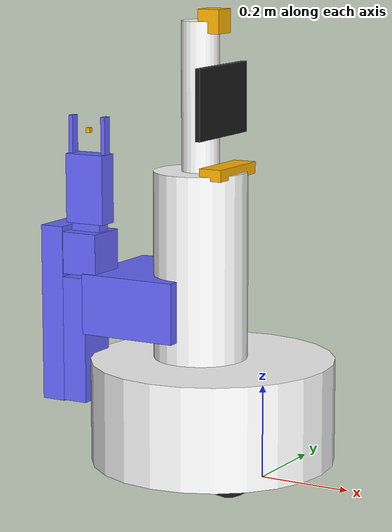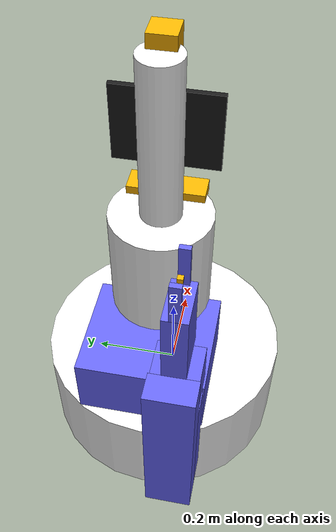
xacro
<?xml version="1.0" ?>

<robot
  xmlns:xacro="http://www.ros.org/wiki/xacro"
  name="korus"
  >

  <!-- ************************** Xacro ************************** -->
  <xacro:property name="pi" value="3.1415926535897931" />
  <xacro:property name="material_white">
    <material name="white">
      <color rgba="1 1 1 1"/>
    </material>
  </xacro:property>
  <xacro:property name="material_orange">
    <material name="orange">
      <color rgba="1.0 0.7 0.0 1"/>
    </material>
  </xacro:property>
  <xacro:property name="material_red">
    <material name="red">
      <color rgba="1.0 0.0 0.0 1"/>
    </material>
  </xacro:property>
  <xacro:property name="material_grey_blue">
    <material name="grey_blue">
      <color rgba="0.4 0.4 1.0 1"/>
    </material>
  </xacro:property>
  <xacro:property name="material_blue">
    <material name="blue">
      <color rgba="0.0 0.0 1.0 1"/>
    </material>
  </xacro:property>
  <xacro:property name="material_green">
    <material name="green">
      <color rgba="0 .8 0 1"/>
    </material>
  </xacro:property>
  <xacro:property name="material_grey">
    <material name="grey">
      <color rgba="0.5 0.5 0.5 1"/>
    </material>
  </xacro:property>
  <xacro:property name="material_black">
    <material name="black">
      <color rgba="0.1 0.1 0.1 1"/>
    </material>
  </xacro:property>
  <xacro:macro name="wheel" params="name length radius off_x off_y off_z type">
    <link name="${name}">
      <visual>
        <geometry>
          <cylinder length="${length}" radius="${radius}"/>
     	  </geometry>
        <origin rpy="0 ${pi/2} 0" xyz="0 0 0"/>
        <material name="black">
          <color rgba="0.1 0.1 0.1 1"/>
        </material>
      </visual>
    </link>
    <joint name="${name}" type="${type}">
      <parent link="base_link"/>
      <child link="${name}"/>
      <origin rpy="0 0 ${pi/2}" xyz="${off_x} ${off_y} ${off_z}"/>
    </joint>
  </xacro:macro>

  <!-- ************************** Base *************************** -->
  <link name="base_footprint"></link>
  <joint name="base_joint" type="fixed">
    <parent link="base_footprint"/>
    <child link="base_link"/>
    <origin rpy="0 0 0" xyz="0.0 0.0 0.075"/>
  </joint>
  <link name="base_link">
    <visual>
      <origin rpy="0 0 0" xyz="-0.12 0 0.060"/>
       <geometry>
        <cylinder length="0.22" radius="0.260"/>
      </geometry>
      <xacro:insert_block name="material_white" />
    </visual>
  </link>
  <xacro:property name="front_wheel_bias" value="0.3" />
  <xacro:property name="front_wheel_radius" value="0.075" />
  <xacro:property name="caster_wheel_bias" value="0.2" />
  <xacro:property name="caster_wheel_radius" value="0.040" />
  <xacro:wheel name="wheel_left" length="0.03" radius="${front_wheel_radius}" off_x="0.0" off_y="${front_wheel_bias/2}" off_z="0.0" type="continuous"/>
  <xacro:wheel name="wheel_right" length="0.03" radius="${front_wheel_radius}" off_x="0.0" off_y="-${front_wheel_bias/2}" off_z="0.0" type="continuous"/>
  <xacro:wheel name="caster_left" length="0.02" radius="${caster_wheel_radius}" off_x="-0.24" off_y="${caster_wheel_bias/2}" off_z="-0.035" type="fixed"/>
  <xacro:wheel name="caster_right" length="0.02" radius="${caster_wheel_radius}" off_x="-0.24" off_y="-${caster_wheel_bias/2}" off_z="-0.035" type="fixed"/>

  <!-- ************************** Body ************************** -->

  <joint name="body" type="fixed">
    <parent link="base_link"/>
    <child link="body_link"/>
    <origin rpy="0 0 0" xyz="-0.150 0.0 0.170"/>
  </joint>
  <link name="body_link">
  </link>

  <!-- ************************** Head ************************** -->
  <joint name="head" type="fixed">
    <parent link="body_link"/>
    <child link="head_link"/>
    <origin rpy="0 0 0" xyz="0 0 0.40"/>
  </joint>
  <link name="head_link">
    <visual>
      <geometry>
        <cylinder length="0.3145" radius="0.04"/>
      </geometry>
      <origin rpy="0 0 0" xyz="0 0 0.15725"/>
      <xacro:insert_block name="material_white"/>
    </visual>
  </link>

  <!-- *********************** StereoCam ************************ -->
  <joint name="stereo_cam_tilt" type="revolute">
    <parent link="head_link"/>
    <child link="stereo_cam_tilt_link"/>
    <origin rpy="0 0 ${pi/2}" xyz="0.065 0 0.004"/>
    <limit effort="10" lower="-0.08722" upper="1.62333" velocity="0.013"/>
  </joint>
  <link name="stereo_cam_tilt_link">
    <visual>
      <geometry>
        <box size="0.05 0.15 0.025" />
      </geometry>
      <origin rpy="0 0 ${-pi/2}" xyz="0.0 0.0 0.0"/>
      <xacro:insert_block name="material_orange" />
    </visual>
  </link>

  <!-- ************************ TeleCam ************************* -->
  <joint name="tele_cam_tilt" type="revolute">
    <parent link="head_link"/>
    <child link="tele_cam_tilt_link"/>
    <origin rpy="0 0 ${pi/2}" xyz="0.0325 0.0 0.3145"/>
    <limit effort="10" lower="-0.5957" upper="0.5957" velocity="0.013"/>
  </joint>
  <link name="tele_cam_tilt_link"></link>
  <joint name="tele_cam_pan" type="revolute">
    <parent link="tele_cam_tilt_link"/>
    <child link="tele_cam_pan_link"/>
    <origin rpy="0 -${pi/2} 0" xyz="0.0 0.0 0.0"/>
    <limit effort="10" lower="-0.7888" upper="0.7888" velocity="0.013"/>
  </joint>
  <link name="tele_cam_pan_link">
    <visual>
      <geometry>
        <box size="0.05 0.05 0.05" />
   	  </geometry>
      <origin rpy="-${pi/2} 0 ${pi/2}" xyz="0.0 0.0 0.0"/>
      <xacro:insert_block name="material_orange" />
    </visual>
  </link>

  <!-- ************************ Monitor ************************* -->
  <joint name="monitor_joint" type="fixed">
    <parent link="head_link"/>
    <child link="monitor_link"/>
    <origin rpy="0 0 0" xyz="0.05 0.0 0.15"/>
  </joint>
  <link name="monitor_link">
    <visual>
      <geometry>
        <box size="0.01 0.20 0.15" />
      </geometry>
      <origin rpy="0.0 0.0 0.0" xyz="0.0 0.0 0.0"/>
      <xacro:insert_block name="material_black" />
    </visual>
  </link>

  <!-- ************************** Arm *************************** -->
  <joint name="torso_turn" type="revolute">
    <parent link="body_link"/>
    <child link="torso_turn_link"/>
    <origin xyz="0 0.0 0" rpy="0 0 0"/>
    <axis xyz="0 0 1"/>
    <limit effort="10" lower="-0.0873" upper="2.2689" velocity="0.5"/>
  </joint>
  <link name="torso_turn_link">
    <visual>
      <origin rpy="0.0 0.0 0.0" xyz="0.0 0.0 0.2"/>
      <geometry>
        <cylinder length="0.4" radius="0.1"/>
      </geometry>
      <origin rpy="0 0 0" xyz="0 0 0.2"/>
      <xacro:insert_block name="material_white" />
    </visual>
  </link>

  <joint name="torso_lift_offset" type="fixed">
    <parent link="torso_turn_link"/>
    <child link="torso_lift_offset_link"/>
    <origin xyz="0 0 0.114" rpy="0 0 0"/>
    <axis xyz="0 0 1"/>
  </joint>
  <link name="torso_lift_offset_link"></link>

  <joint name="torso_lift" type="prismatic">
    <parent link="torso_lift_offset_link"/>
    <child link="torso_lift_link"/>
    <origin xyz="0 0 0" rpy="0 0 0"/>
    <axis xyz="0 0 1"/>
    <limit effort="10" lower="0.0" upper="0.16" velocity="0.5"/>
  </joint>
  <link name="torso_lift_link">
    <visual>
      <geometry>
        <box size="0.2185 0.25 0.13"/>
      </geometry>
      <origin xyz="-0.10925 0.0 0.0" rpy="0 0 0"/>
      <xacro:insert_block name="material_grey_blue" />
    </visual>
  </link>

  <joint name="shoulder_roll" type="revolute">
    <parent link="torso_lift_link"/>
    <child link="shoulder_roll_link"/>
    <origin xyz="-0.241 -0.076 0" rpy="${pi} ${pi/2} 0.0"/>
    <axis xyz="0 1 0"/>
    <limit effort="10" lower="-${pi}" upper="${pi}" velocity="0.5"/>
  </joint>
  <link name="shoulder_roll_link">
  </link>

  <joint name="shoulder_pitch" type="revolute">
    <parent link="shoulder_roll_link"/>
    <child link="shoulder_pitch_link"/>
    <origin xyz="0.0 0.0 0.0" rpy="0.0 0.0 0.0"/>
    <axis xyz="0 0 1"/>
    <limit effort="10" lower="-${pi}" upper="${pi}" velocity="0.5"/>
  </joint>
  <link name="shoulder_pitch_link">
    <visual>
      <geometry>
        <box size="0.270 0.093 0.055"/>
      </geometry>
      <origin xyz="0.081 0.0 0.0" rpy="0 0 0"/>
      <xacro:insert_block name="material_grey_blue" />
    </visual>
  </link>

  <joint name="elbow_pitch" type="revolute">
    <parent link="shoulder_pitch_link"/>
    <child link="elbow_pitch_link"/>
    <origin xyz="0.162 0.0 0.045" rpy="0 0 3.141592"/>
    <axis xyz="0 0 1"/>
    <limit effort="10" lower="-${pi}" upper="${pi}" velocity="0.5"/>
  </joint>
  <link name="elbow_pitch_link">
    <visual>
      <geometry>
        <box size="0.380 0.093 0.053"/>
      </geometry>
      <origin xyz="0.134 0.00 0.009" rpy="0 0 0"/>
      <xacro:insert_block name="material_grey_blue" />
    </visual>
  </link>

  <joint name="wrist_pitch" type="revolute">
    <parent link="elbow_pitch_link"/>
    <child link="wrist_pitch_link"/>
    <origin xyz="0.268 0.0 -0.058" rpy="0 0 0"/>
    <axis xyz="0 0 1"/>
    <limit effort="10" lower="-1.7453" upper="1.7453" velocity="0.5"/>
  </joint>
  <link name="wrist_pitch_link">
    <visual>
      <geometry>
        <box size="0.09 0.09 0.081"/>
      </geometry>
      <origin xyz="0.0 0.0 0.0" rpy="0 0 0"/>
      <xacro:insert_block name="material_grey_blue" />
    </visual>
  </link>

  <joint name="wrist_roll" type="revolute">
    <parent link="wrist_pitch_link"/>
    <child link="wrist_roll_link"/>
    <origin xyz="0.045 0 0" rpy="0 ${pi/2} 0.0"/>
    <axis xyz="0 0 1"/>
    <limit effort="10" lower="-2.0944" upper="2.0944" velocity="0.5"/>
  </joint>
  <link name="wrist_roll_link">
    <visual>
      <geometry>
        <box size="0.068 0.034 0.068"/>
      </geometry>
      <origin xyz="0.0 0.0 0.034" rpy="0 0 0"/>
      <xacro:insert_block name="material_grey_blue" />
    </visual>
  </link>

  <joint name="wrist_yaw" type="revolute">
    <parent link="wrist_roll_link"/>
    <child link="wrist_yaw_link"/>
    <origin xyz="0 0 0.034" rpy="${pi/2} -${pi/2} 0.0"/>
    <axis xyz="0 0 1"/>
    <limit effort="10" lower="-1.6232" upper="1.6232" velocity="0.5"/>
  </joint>
  <link name="wrist_yaw_link">
      <visual>
      <geometry>
        <box size="0.148 0.09 0.045"/>
      </geometry>
      <origin xyz="0.057 0.0 0.0" rpy="0 0 0"/>
      <xacro:insert_block name="material_grey_blue" />
    </visual>
  </link>

  <!-- Endeffector (gripper) -->
  <joint name="gripper_palm" type="fixed">
    <parent link="wrist_yaw_link"/>
    <child link="gripper_palm_link"/>
    <origin xyz="0.131 0 0" rpy="0.0 0.0 0.0"/>
    <axis xyz="0 0 1"/>
    <limit effort="10" lower="-1.6232" upper="1.6232" velocity="0.5"/>
  </joint>
  <link name="gripper_palm_link">
  </link>

  <!-- center of the volume covered by the fingers -->
  <joint name="gripper_center" type="fixed">
    <parent link="wrist_yaw_link"/>
    <child link="gripper_center_link"/>
    <origin xyz="0.181 0 0" rpy="0 0 0"/>
  </joint>
  <link name="gripper_center_link">
    <visual>
      <geometry>
        <box size="0.01 0.01 0.01"/>
      </geometry>
      <origin xyz="0.0 0.0 0.0" rpy="0 0 0"/>
      <xacro:insert_block name="material_orange" />
    </visual>
  </link>

  <joint name="gripper_tip" type="fixed">
    <parent link="wrist_yaw_link"/>
    <child link="gripper_tip_link"/>
    <origin xyz="0.191 0 0" rpy="0.0 0.0 0.0"/>
  </joint>
  <link name="gripper_tip_link">
  </link>

  <joint name="gripper_left_finger_joint" type="revolute">
    <parent link="wrist_yaw_link"/>
    <child link="gripper_left_finger_tip_link"/>
    <origin xyz="0.131 -0.04 0.0" rpy="0.0 0.0 0.0"/>
    <axis xyz="0 0 1"/>
    <limit effort="10" lower="-1.22173" upper="1.22173" velocity="0.5"/>
  </joint>
  <link name="gripper_left_finger_tip_link">
      <visual>
      <geometry>
        <box size="0.08 0.02 0.01"/>
      </geometry>
      <origin xyz="0.04 0.0 0.0" rpy="${pi/2} 0 0"/>
      <xacro:insert_block name="material_grey_blue" />
    </visual>
  </link>

  <joint name="gripper_right_finger_joint" type="revolute">
    <parent link="wrist_yaw_link"/>
    <child link="gripper_right_finger_tip_link"/>
    <origin xyz="0.131 0.04 0.0" rpy="${pi} 0.0 0.0"/>
    <axis xyz="0 0 1"/>
    <limit effort="10" lower="-1.22173" upper="1.22173" velocity="0.5"/>
  </joint>
  <link name="gripper_right_finger_tip_link">
      <visual>
      <geometry>
        <box size="0.08 0.02 0.01"/>
      </geometry>
      <origin xyz="0.04 0.0 0.0" rpy="${pi/2} 0 0"/>
      <xacro:insert_block name="material_grey_blue" />
    </visual>
  </link>

</robot>
